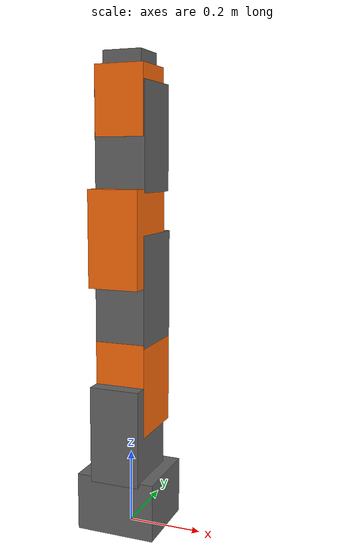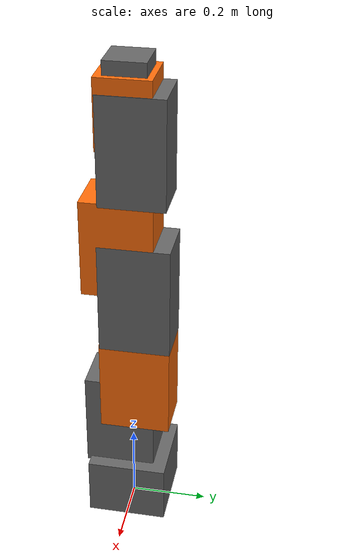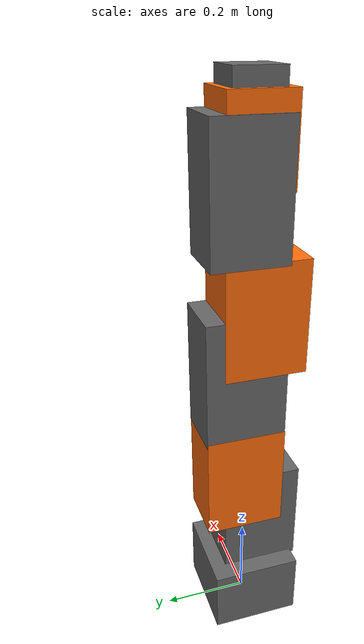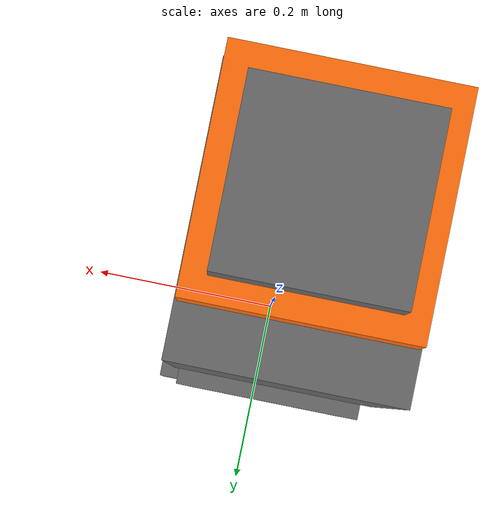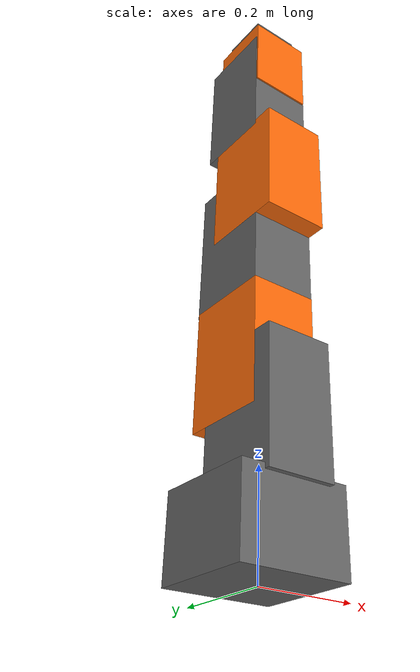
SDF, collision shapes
<sdf version='1.4'>
  <model name='iiwa7'>
    <link name='iiwa_link_0'>
      <pose frame=''>0 0 0 0 -0 0</pose>
      <inertial>
        <pose frame=''>-0.1 0 0.07 0 -0 0</pose>
        <mass>5</mass>
        <inertia>
          <ixx>0.05</ixx>
          <ixy>0</ixy>
          <ixz>0</ixz>
          <iyy>0.06</iyy>
          <iyz>0</iyz>
          <izz>0.03</izz>
        </inertia>
      </inertial>
      <visual name='iiwa_link_0_visual'>
        <pose frame=''>0 0 0 0 -0 0</pose>
        <geometry>
          <mesh>
            <scale>1 1 1</scale>
            <uri>link_0.obj</uri>
          </mesh>
        </geometry>
        <material>
	       <diffuse>0.4 0.4 0.4 1.0</diffuse>
        </material>
      </visual>
      <visual name='iiwa_link_0_collision_visual'>
        <pose>-0.004563 0 0.07875 0 -0 0</pose>
        <geometry>
          <box>
            <size>0.216874 0.207874 0.1575</size>
          </box>
        </geometry>
        <material>
	       <diffuse>0.4 0.4 0.4 0.5</diffuse>
        </material>
      </visual>
      <collision name='iiwa_link_0_collision'>
        <pose>-0.004563 0 0.07875 0 -0 0</pose>
        <geometry>
          <box>
            <size>0.216874 0.207874 0.1575</size>
          </box>
        </geometry>
      </collision>
      <gravity>1</gravity>
      <velocity_decay/>
      <self_collide>0</self_collide>
    </link>

    <link name='iiwa_link_1'>
      <pose frame=''>0 0 0.15 0 -0 0</pose>
      <inertial>
        <pose frame=''>0 -0.03 0.12 0 -0 0</pose>
        <mass>3.4525</mass>
        <inertia>
          <ixx>0.02183</ixx>
          <ixy>0</ixy>
          <ixz>0</ixz>
          <iyy>0.007703</iyy>
          <iyz>-0.003887</iyz>
          <izz>0.02083</izz>
        </inertia>
      </inertial>

      <visual name='iiwa_link_1_visual'>
        <pose frame=''>0 0 0.0075 0 -0 0</pose>
        <geometry>
          <mesh>
            <scale>1 1 1</scale>
            <uri>link_1.obj</uri>
          </mesh>
        </geometry>
        <material>
	       <diffuse>0.4 0.4 0.4 1.0</diffuse>
        </material>
      </visual>
      <visual name='iiwa_link_1_collision_visual'>
        <pose>0 -0.023301 0.127997 0 -0 0</pose>
        <geometry>
          <box>
            <size>0.13596 0.182584 0.260995</size>
          </box>
        </geometry>
        <material>
	       <diffuse>0.4 0.4 0.4 0.5</diffuse>
        </material>
      </visual>
      <collision name='iiwa_link_1_collision'>
        <pose>0 -0.023301 0.127997 0 -0 0</pose>
        <geometry>
          <box>
            <size>0.13596 0.182584 0.260995</size>
          </box>
        </geometry>
      </collision>

      <gravity>1</gravity>
      <velocity_decay/>
      <self_collide>0</self_collide>
    </link>

    <joint name='iiwa_joint_1' type='revolute'>
      <child>iiwa_link_1</child>
      <parent>iiwa_link_0</parent>
      <axis>
        <xyz>0 0 1</xyz>
        <limit>
          <lower>-2.96706</lower>
          <upper>2.96706</upper>
          <effort>300</effort>
          <velocity>10</velocity>
        </limit>
        <dynamics>
          <damping>0.0</damping>
        </dynamics>
      </axis>
    </joint>

    <link name='iiwa_link_2'>
      <pose frame=''>0 0 0.34 1.5708 -0 -3.14159</pose>
      <inertial>
        <pose frame=''>0.0003 0.059 0.042 0 -0 0</pose>
        <mass>3.4821</mass>
        <inertia>
          <ixx>0.02076</ixx>
          <ixy>0</ixy>
          <ixz>-0.003626</ixz>
          <iyy>0.02179</iyy>
          <iyz>0</iyz>
          <izz>0.00779</izz>
        </inertia>
      </inertial>

      <visual name='iiwa_link_2_visual'>
        <pose frame=''>0 0 -0.006 0 -0 0</pose>
        <geometry>
          <mesh>
            <scale>1 1 1</scale>
            <uri>link_2.obj</uri>
          </mesh>
        </geometry>
        <material>
	       <diffuse>1.0 0.423529411765 0.0392156862745 1.0</diffuse>
        </material>
      </visual>
      <visual name='iiwa_link_2_collision_visual'>
        <pose>0 0.0580045 0.0173035 0 -0 0</pose>
        <geometry>
          <box>
            <size>0.135988 0.251991 0.182605</size>
          </box>
        </geometry>
        <material>
	       <diffuse>1.0 0.423529411765 0.0392156862745 0.5</diffuse>
        </material>
      </visual>
      <collision name='iiwa_link_2_collision'>
        <pose>0 0.0580045 0.0173035 0 -0 0</pose>
        <geometry>
          <box>
            <size>0.135988 0.251991 0.182605</size>
          </box>
        </geometry>
      </collision>
      <gravity>1</gravity>
      <velocity_decay/>
      <self_collide>0</self_collide>
    </link>

    <joint name='iiwa_joint_2' type='revolute'>
      <child>iiwa_link_2</child>
      <parent>iiwa_link_1</parent>
      <axis>
        <xyz>0 1 0</xyz>
        <limit>
          <lower>-2.0944</lower>
          <upper>2.0944</upper>
          <effort>300</effort>
          <velocity>10</velocity>
        </limit>
        <dynamics>
          <damping>0.0</damping>
        </dynamics>
      </axis>
    </joint>

    <link name='iiwa_link_3'>
      <pose frame=''>0 -0 0.55 0 0 0</pose>
      <inertial>
        <pose frame=''>0 0.03 0.13 0 -0 0</pose>
        <mass>4.05623</mass>
        <inertia>
          <ixx>0.03204</ixx>
          <ixy>0</ixy>
          <ixz>0</ixz>
          <iyy>0.00972</iyy>
          <iyz>0.006227</iyz>
          <izz>0.03042</izz>
        </inertia>
      </inertial>

      <visual name='iiwa_link_3_visual'>
        <pose frame=''>0 -0.005 -0.026 0 -0 0</pose>
        <geometry>
          <mesh>
            <scale>1 1 1</scale>
            <uri>link_3.obj</uri>
          </mesh>
        </geometry>
        <material>
	       <diffuse>0.4 0.4 0.4 1.0</diffuse>
        </material>
      </visual>
      <visual name='iiwa_link_3_collision_visual'>
        <pose>6.5e-06 0.0182965 0.11073 0 -0 0</pose>
        <geometry>
          <box>
            <size>0.135987 0.182593 0.29346</size>
          </box>
        </geometry>
        <material>
	       <diffuse>0.4 0.4 0.4 0.5</diffuse>
        </material>
      </visual>
      <collision name='iiwa_link_3_collision'>
        <pose>6.5e-06 0.0182965 0.11073 0 -0 0</pose>
        <geometry>
          <box>
            <size>0.135987 0.182593 0.29346</size>
          </box>
        </geometry>
      </collision>
      <gravity>1</gravity>
      <velocity_decay/>
      <self_collide>0</self_collide>
    </link>

    <joint name='iiwa_joint_3' type='revolute'>
      <child>iiwa_link_3</child>
      <parent>iiwa_link_2</parent>
      <axis>
        <xyz>0 0 1</xyz>
        <limit>
          <lower>-2.96706</lower>
          <upper>2.96706</upper>
          <effort>300</effort>
          <velocity>10</velocity>
        </limit>
        <dynamics>
          <damping>0.0</damping>
        </dynamics>
      </axis>
    </joint>

    <link name='iiwa_link_4'>
      <pose frame=''>0 -0 0.74 1.5708 0 0</pose>
      <inertial>
        <pose frame=''>0 0.067 0.034 0 -0 0</pose>
        <mass>3.4822</mass>
        <inertia>
          <ixx>0.02178</ixx>
          <ixy>0</ixy>
          <ixz>0</ixz>
          <iyy>0.02075</iyy>
          <iyz>-0.003625</iyz>
          <izz>0.007785</izz>
        </inertia>
      </inertial>

      <visual name='iiwa_link_4_visual'>
        <pose frame=''>0 0 0 0 -0 0</pose>
        <geometry>
          <mesh>
            <scale>1 1 1</scale>
            <uri>link_4.obj</uri>
          </mesh>
        </geometry>
        <material>
	       <diffuse>1.0 0.423529411765 0.0392156862745 1.0</diffuse>
        </material>
      </visual>
      <visual name='iiwa_link_4_collision_visual'>
        <pose>0 0.0580045 0.0233035 0 -0 0</pose>
        <geometry>
          <box>
            <size>0.135988 0.251991 0.182605</size>
          </box>
        </geometry>
        <material>
	       <diffuse>1.0 0.423529411765 0.0392156862745 0.5</diffuse>
        </material>
      </visual>
      <collision name='iiwa_link_4_collision'>
        <pose>0 0.0580045 0.0233035 0 -0 0</pose>
        <geometry>
          <box>
            <size>0.135988 0.251991 0.182605</size>
          </box>
        </geometry>
      </collision>
      <gravity>1</gravity>
      <velocity_decay/>
      <self_collide>0</self_collide>
    </link>

    <joint name='iiwa_joint_4' type='revolute'>
      <child>iiwa_link_4</child>
      <parent>iiwa_link_3</parent>
      <axis>
        <xyz>0 -1 0</xyz>
        <limit>
          <lower>-2.0944</lower>
          <upper>2.0944</upper>
          <effort>300</effort>
          <velocity>10</velocity>
        </limit>
        <dynamics>
          <damping>0.0</damping>
        </dynamics>
      </axis>
    </joint>

    <link name='iiwa_link_5'>
      <pose frame=''>0 0 0.95 0 0 0</pose>
      <inertial>
        <pose frame=''>0.0001 0.021 0.076 0 -0 0</pose>
        <mass>2.1633</mass>
        <inertia>
          <ixx>0.01287</ixx>
          <ixy>0</ixy>
          <ixz>0</ixz>
          <iyy>0.005708</iyy>
          <iyz>-0.003946</iyz>
          <izz>0.01112</izz>
        </inertia>
      </inertial>

      <visual name='iiwa_link_5_visual'>
        <pose frame=''>0 0 -0.026 0 -0 0</pose>
        <geometry>
          <mesh>
            <scale>1 1 1</scale>
            <uri>link_5.obj</uri>
          </mesh>
        </geometry>
        <material>
	       <diffuse>0.4 0.4 0.4 1.0</diffuse>
        </material>
      </visual>
      <visual name='iiwa_link_5_collision_visual'>
        <pose>0 0.015546 0.102458 0 -0 0</pose>
        <geometry>
          <box>
            <size>0.135999 0.167092 0.276916</size>
          </box>
        </geometry>
        <material>
	       <diffuse>0.4 0.4 0.4 0.5</diffuse>
        </material>
      </visual>
      <collision name='iiwa_link_5_collision'>
        <pose>0 0.015546 0.102458 0 -0 0</pose>
        <geometry>
          <box>
            <size>0.135999 0.167092 0.276916</size>
          </box>
        </geometry>
      </collision>
      <gravity>1</gravity>
      <velocity_decay/>
      <self_collide>0</self_collide>
    </link>

    <joint name='iiwa_joint_5' type='revolute'>
      <child>iiwa_link_5</child>
      <parent>iiwa_link_4</parent>
      <axis>
        <xyz>0 0 1</xyz>
        <limit>
          <lower>-2.96706</lower>
          <upper>2.96706</upper>
          <effort>300</effort>
          <velocity>10</velocity>
        </limit>
        <dynamics>
          <damping>0.0</damping>
        </dynamics>
      </axis>
    </joint>

    <link name='iiwa_link_6'>
      <pose frame=''>0 -0.0607 1.14 1.5708 0 -3.14159</pose>
      <inertial>
        <pose frame=''>0 0.0006 0.0004 0 -0 0</pose>
        <mass>2.3466</mass>
        <inertia>
          <ixx>0.006509</ixx>
          <ixy>0</ixy>
          <ixz>0</ixz>
          <iyy>0.006259</iyy>
          <iyz>0.00031891</iyz>
          <izz>0.004527</izz>
        </inertia>
      </inertial>

      <visual name='iiwa_link_6_visual'>
        <pose frame=''>0 0 0.121 0 3.14159 0</pose>
        <geometry>
          <mesh>
            <scale>1 1 1</scale>
            <uri>link_6.obj</uri>
          </mesh>
        </geometry>
        <material>
	       <diffuse>1.0 0.423529411765 0.0392156862745 1.0</diffuse>
        </material>
      </visual>
      <visual name='iiwa_link_6_collision_visual'>
        <pose>1e-06 0.0022065 0.0582045 0 -0 0</pose>
        <geometry>
          <box>
            <size>0.132334 0.177387 0.137409</size>
          </box>
        </geometry>
        <material>
	       <diffuse>1.0 0.423529411765 0.0392156862745 0.5</diffuse>
        </material>
      </visual>
      <collision name='iiwa_link_6_collision'>
        <pose>1e-06 0.0022065 0.0582045 0 -0 0</pose>
        <geometry>
          <box>
            <size>0.132334 0.177387 0.137409</size>
          </box>
        </geometry>
      </collision>
      <gravity>1</gravity>
      <velocity_decay/>
      <self_collide>0</self_collide>
    </link>

    <joint name='iiwa_joint_6' type='revolute'>
      <child>iiwa_link_6</child>
      <parent>iiwa_link_5</parent>
      <axis>
        <xyz>-0 1 -0</xyz>
        <limit>
          <lower>-2.0944</lower>
          <upper>2.0944</upper>
          <effort>300</effort>
          <velocity>10</velocity>
        </limit>
        <dynamics>
          <damping>0.0</damping>
        </dynamics>
      </axis>
    </joint>

    <link name='iiwa_link_7'>
      <pose frame=''>0 0 1.221 0 0 0</pose>
      <inertial>
        <pose frame=''>0 0 0.02 0 -0 0</pose>
        <mass>3.129</mass>
        <inertia>
          <ixx>0.01464</ixx>
          <ixy>0.0005912</ixy>
          <ixz>0</ixz>
          <iyy>0.01465</iyy>
          <iyz>0</iyz>
          <izz>0.002872</izz>
        </inertia>
      </inertial>

      <visual name='iiwa_link_7_visual'>
        <pose frame=''>0 0 -0.0005 0 -0 0</pose>
        <geometry>
          <mesh>
            <scale>1 1 1</scale>
            <uri>link_7.obj</uri>
          </mesh>
        </geometry>
        <material>
	       <diffuse>0.4 0.4 0.4 1.0</diffuse>
        </material>
      </visual>
      <visual name='iiwa_link_7_collision_visual'>
        <pose>2e-06 2.5e-06 0.021997 0 -0 0</pose>
        <geometry>
          <box>
            <size>0.10385 0.103885 0.045</size>
          </box>
        </geometry>
        <material>
	       <diffuse>0.4 0.4 0.4 0.5</diffuse>
        </material>
      </visual>
      <collision name='iiwa_link_7_collision'>
        <pose>2e-06 2.5e-06 0.021997 0 -0 0</pose>
        <geometry>
          <box>
            <size>0.10385 0.103885 0.045</size>
          </box>
        </geometry>
      </collision>
      <gravity>1</gravity>
      <velocity_decay/>
      <self_collide>0</self_collide>
    </link>
    <joint name='iiwa_joint_7' type='revolute'>
      <child>iiwa_link_7</child>
      <parent>iiwa_link_6</parent>
      <axis>
        <xyz>0 0 1</xyz>
        <limit>
          <lower>-3.05433</lower>
          <upper>3.05433</upper>
          <effort>300</effort>
          <velocity>10</velocity>
        </limit>
        <dynamics>
          <damping>0.0</damping>
        </dynamics>
      </axis>
    </joint>
    <static>0</static>
  </model>
</sdf>
